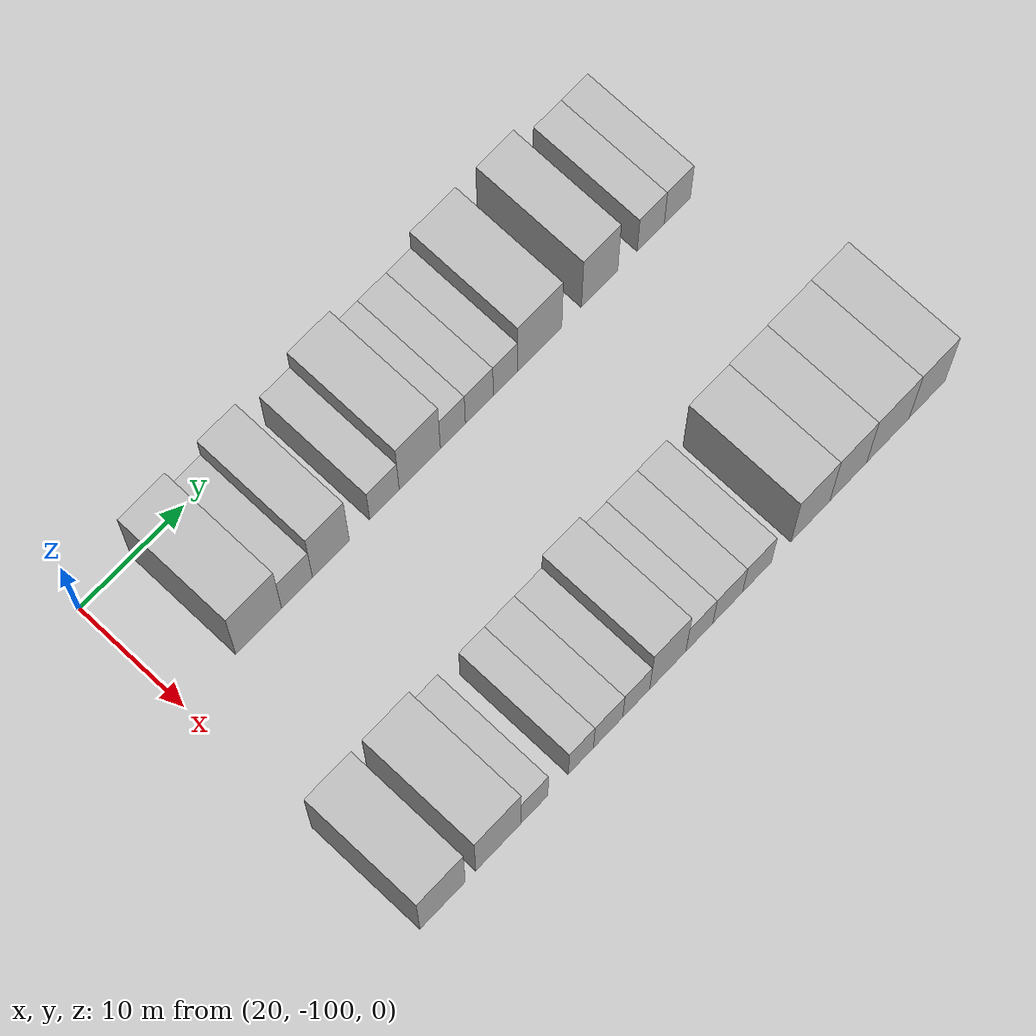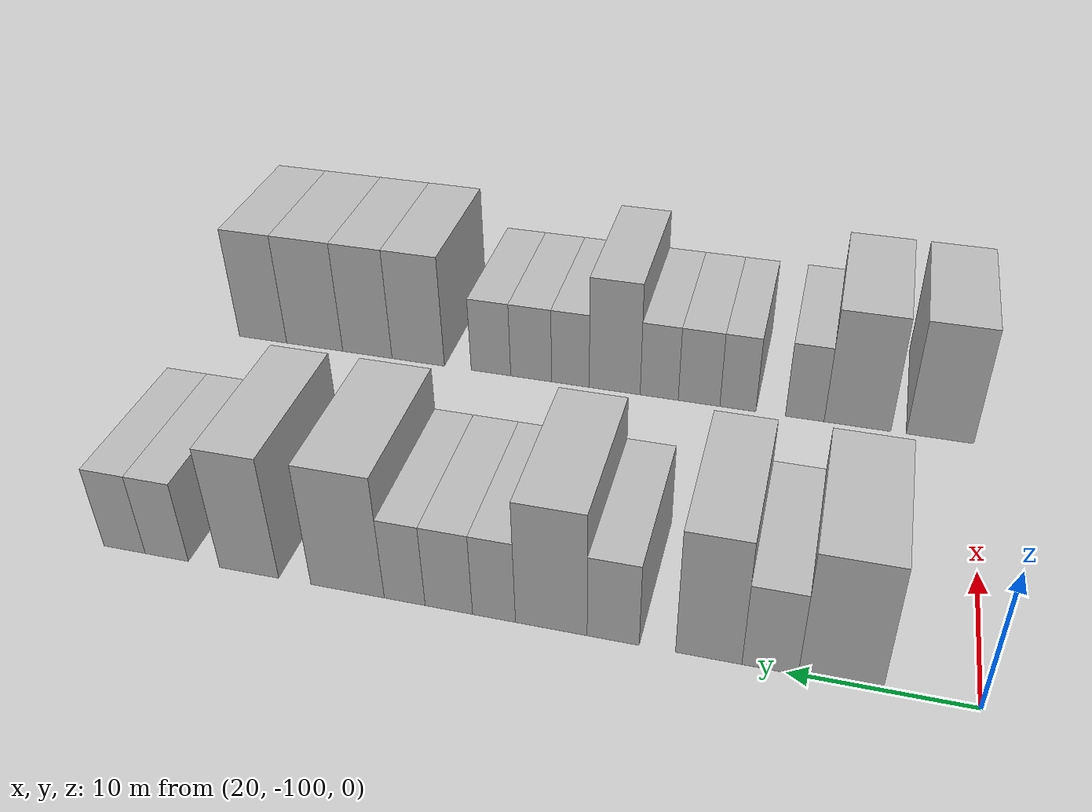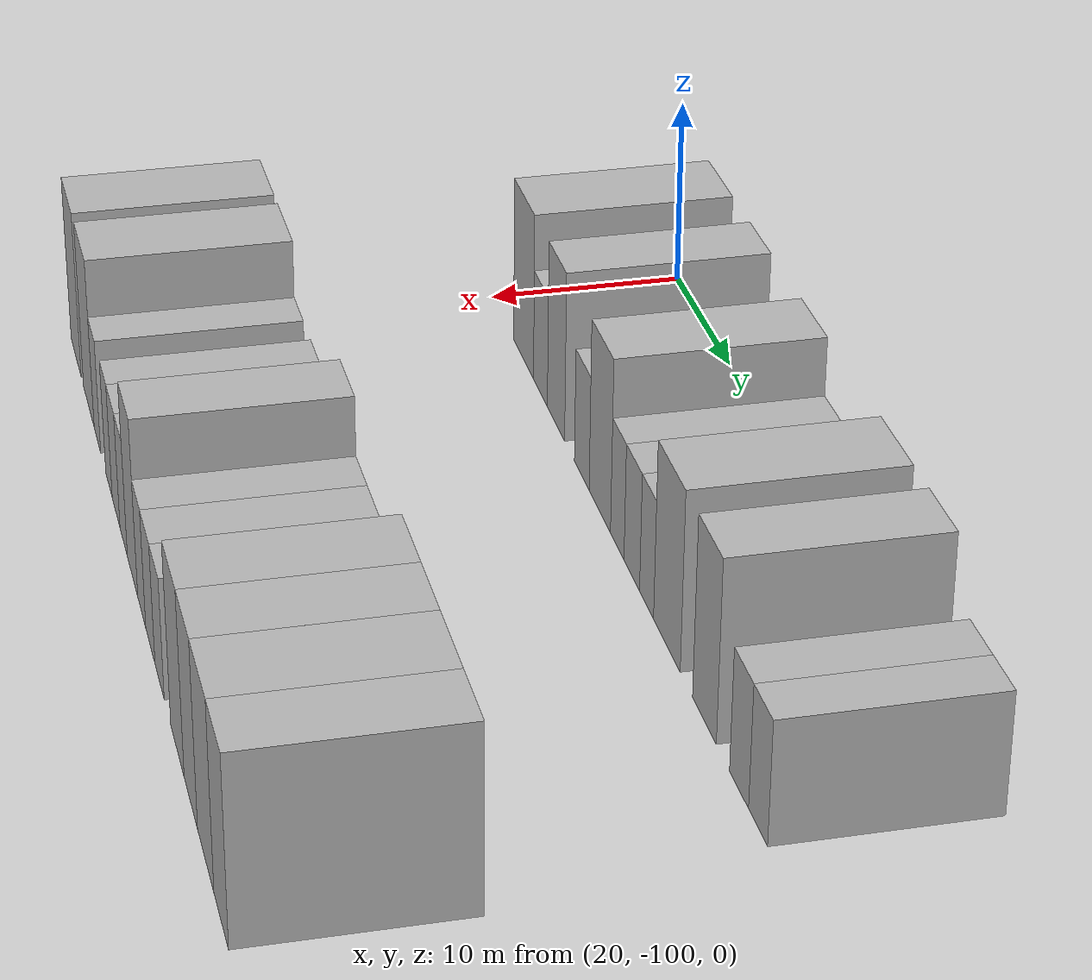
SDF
<sdf version="1.6">
 <world name="default">
  <model name="building_29">
   <static>1</static>
   <pose>25.0000 -92.8101 0 0.000000 0.000000 0.000000</pose>
   <link name="link">
    <pose>0 0 4.50 0 0 0</pose>
    <collision name="collision"><geometry><box><size>10.0000 4.4262 9.0000</size></box></geometry></collision>
    <visual name="visual">
     <cast_shadows>0</cast_shadows>
     <geometry><box><size>10.0000 4.4262 9.0000</size></box></geometry>
     <material>
      <script>
       <uri>model://HANNAS_wall/materials/scripts</uri>
       <uri>model://HANNAS_wall/materials/textures</uri>
       <name>vrc/HANNAS_wall</name>
      </script>
     </material>
    </visual>
   </link>
  </model>
  <model name="building_30">
   <static>1</static>
   <pose>25.0000 -89.0975 0 0.000000 0.000000 0.000000</pose>
   <link name="link">
    <pose>0 0 3.00 0 0 0</pose>
    <collision name="collision"><geometry><box><size>10.0000 2.9989 6.0000</size></box></geometry></collision>
    <visual name="visual">
     <cast_shadows>0</cast_shadows>
     <geometry><box><size>10.0000 2.9989 6.0000</size></box></geometry>
     <material>
      <script>
       <uri>model://HANNAS_wall/materials/scripts</uri>
       <uri>model://HANNAS_wall/materials/textures</uri>
       <name>vrc/HANNAS_wall</name>
      </script>
     </material>
    </visual>
   </link>
  </model>
  <model name="building_31">
   <static>1</static>
   <pose>25.0000 -85.7972 0 0.000000 0.000000 0.000000</pose>
   <link name="link">
    <pose>0 0 4.50 0 0 0</pose>
    <collision name="collision"><geometry><box><size>10.0000 3.6017 9.0000</size></box></geometry></collision>
    <visual name="visual">
     <cast_shadows>0</cast_shadows>
     <geometry><box><size>10.0000 3.6017 9.0000</size></box></geometry>
     <material>
      <script>
       <uri>model://HANNAS_wall/materials/scripts</uri>
       <uri>model://HANNAS_wall/materials/textures</uri>
       <name>vrc/HANNAS_wall</name>
      </script>
     </material>
    </visual>
   </link>
  </model>
  <model name="building_32">
   <static>1</static>
   <pose>25.0000 -80.5384 0 0.000000 0.000000 0.000000</pose>
   <link name="link">
    <pose>0 0 3.00 0 0 0</pose>
    <collision name="collision"><geometry><box><size>10.0000 2.9159 6.0000</size></box></geometry></collision>
    <visual name="visual">
     <cast_shadows>0</cast_shadows>
     <geometry><box><size>10.0000 2.9159 6.0000</size></box></geometry>
     <material>
      <script>
       <uri>model://HANNAS_wall/materials/scripts</uri>
       <uri>model://HANNAS_wall/materials/textures</uri>
       <name>vrc/HANNAS_wall</name>
      </script>
     </material>
    </visual>
   </link>
  </model>
  <model name="building_33">
   <static>1</static>
   <pose>25.0000 -77.0380 0 0.000000 0.000000 0.000000</pose>
   <link name="link">
    <pose>0 0 4.50 0 0 0</pose>
    <collision name="collision"><geometry><box><size>10.0000 4.0849 9.0000</size></box></geometry></collision>
    <visual name="visual">
     <cast_shadows>0</cast_shadows>
     <geometry><box><size>10.0000 4.0849 9.0000</size></box></geometry>
     <material>
      <script>
       <uri>model://HANNAS_wall/materials/scripts</uri>
       <uri>model://HANNAS_wall/materials/textures</uri>
       <name>vrc/HANNAS_wall</name>
      </script>
     </material>
    </visual>
   </link>
  </model>
  <model name="building_34">
   <static>1</static>
   <pose>25.0000 -73.7491 0 0.000000 0.000000 0.000000</pose>
   <link name="link">
    <pose>0 0 3.00 0 0 0</pose>
    <collision name="collision"><geometry><box><size>10.0000 2.4927 6.0000</size></box></geometry></collision>
    <visual name="visual">
     <cast_shadows>0</cast_shadows>
     <geometry><box><size>10.0000 2.4927 6.0000</size></box></geometry>
     <material>
      <script>
       <uri>model://HANNAS_wall/materials/scripts</uri>
       <uri>model://HANNAS_wall/materials/textures</uri>
       <name>vrc/HANNAS_wall</name>
      </script>
     </material>
    </visual>
   </link>
  </model>
  <model name="building_35">
   <static>1</static>
   <pose>25.0000 -71.1056 0 0.000000 0.000000 0.000000</pose>
   <link name="link">
    <pose>0 0 3.00 0 0 0</pose>
    <collision name="collision"><geometry><box><size>10.0000 2.7944 6.0000</size></box></geometry></collision>
    <visual name="visual">
     <cast_shadows>0</cast_shadows>
     <geometry><box><size>10.0000 2.7944 6.0000</size></box></geometry>
     <material>
      <script>
       <uri>model://HANNAS_wall/materials/scripts</uri>
       <uri>model://HANNAS_wall/materials/textures</uri>
       <name>vrc/HANNAS_wall</name>
      </script>
     </material>
    </visual>
   </link>
  </model>
  <model name="building_36">
   <static>1</static>
   <pose>25.0000 -68.4861 0 0.000000 0.000000 0.000000</pose>
   <link name="link">
    <pose>0 0 3.00 0 0 0</pose>
    <collision name="collision"><geometry><box><size>10.0000 2.4445 6.0000</size></box></geometry></collision>
    <visual name="visual">
     <cast_shadows>0</cast_shadows>
     <geometry><box><size>10.0000 2.4445 6.0000</size></box></geometry>
     <material>
      <script>
       <uri>model://HANNAS_wall/materials/scripts</uri>
       <uri>model://HANNAS_wall/materials/textures</uri>
       <name>vrc/HANNAS_wall</name>
      </script>
     </material>
    </visual>
   </link>
  </model>
  <model name="building_37">
   <static>1</static>
   <pose>25.0000 -65.0238 0 0.000000 0.000000 0.000000</pose>
   <link name="link">
    <pose>0 0 4.50 0 0 0</pose>
    <collision name="collision"><geometry><box><size>10.0000 4.4801 9.0000</size></box></geometry></collision>
    <visual name="visual">
     <cast_shadows>0</cast_shadows>
     <geometry><box><size>10.0000 4.4801 9.0000</size></box></geometry>
     <material>
      <script>
       <uri>model://HANNAS_wall/materials/scripts</uri>
       <uri>model://HANNAS_wall/materials/textures</uri>
       <name>vrc/HANNAS_wall</name>
      </script>
     </material>
    </visual>
   </link>
  </model>
  <model name="building_38">
   <static>1</static>
   <pose>25.0000 -58.9223 0 0.000000 0.000000 0.000000</pose>
   <link name="link">
    <pose>0 0 4.50 0 0 0</pose>
    <collision name="collision"><geometry><box><size>10.0000 3.7229 9.0000</size></box></geometry></collision>
    <visual name="visual">
     <cast_shadows>0</cast_shadows>
     <geometry><box><size>10.0000 3.7229 9.0000</size></box></geometry>
     <material>
      <script>
       <uri>model://HANNAS_wall/materials/scripts</uri>
       <uri>model://HANNAS_wall/materials/textures</uri>
       <name>vrc/HANNAS_wall</name>
      </script>
     </material>
    </visual>
   </link>
  </model>
  <model name="building_39">
   <static>1</static>
   <pose>25.0000 -53.6632 0 0.000000 0.000000 0.000000</pose>
   <link name="link">
    <pose>0 0 3.00 0 0 0</pose>
    <collision name="collision"><geometry><box><size>10.0000 2.7953 6.0000</size></box></geometry></collision>
    <visual name="visual">
     <cast_shadows>0</cast_shadows>
     <geometry><box><size>10.0000 2.7953 6.0000</size></box></geometry>
     <material>
      <script>
       <uri>model://HANNAS_wall/materials/scripts</uri>
       <uri>model://HANNAS_wall/materials/textures</uri>
       <name>vrc/HANNAS_wall</name>
      </script>
     </material>
    </visual>
   </link>
  </model>
  <model name="building_40">
   <static>1</static>
   <pose>25.0000 -50.9100 0 0.000000 0.000000 0.000000</pose>
   <link name="link">
    <pose>0 0 3.00 0 0 0</pose>
    <collision name="collision"><geometry><box><size>10.0000 2.7112 6.0000</size></box></geometry></collision>
    <visual name="visual">
     <cast_shadows>0</cast_shadows>
     <geometry><box><size>10.0000 2.7112 6.0000</size></box></geometry>
     <material>
      <script>
       <uri>model://HANNAS_wall/materials/scripts</uri>
       <uri>model://HANNAS_wall/materials/textures</uri>
       <name>vrc/HANNAS_wall</name>
      </script>
     </material>
    </visual>
   </link>
  </model>
  <model name="building_130">
   <static>1</static>
   <pose>47.0000 -97.8074 0 0.000000 0.000000 0.000000</pose>
   <link name="link">
    <pose>0 0 4.50 0 0 0</pose>
    <collision name="collision"><geometry><box><size>10.0000 4.3491 9.0000</size></box></geometry></collision>
    <visual name="visual">
     <cast_shadows>0</cast_shadows>
     <geometry><box><size>10.0000 4.3491 9.0000</size></box></geometry>
     <material>
      <script>
       <uri>model://HANNAS_wall/materials/scripts</uri>
       <uri>model://HANNAS_wall/materials/textures</uri>
       <name>vrc/HANNAS_wall</name>
      </script>
     </material>
    </visual>
   </link>
  </model>
  <model name="building_131">
   <static>1</static>
   <pose>47.0000 -92.4303 0 0.000000 0.000000 0.000000</pose>
   <link name="link">
    <pose>0 0 4.50 0 0 0</pose>
    <collision name="collision"><geometry><box><size>10.0000 4.4052 9.0000</size></box></geometry></collision>
    <visual name="visual">
     <cast_shadows>0</cast_shadows>
     <geometry><box><size>10.0000 4.4052 9.0000</size></box></geometry>
     <material>
      <script>
       <uri>model://HANNAS_wall/materials/scripts</uri>
       <uri>model://HANNAS_wall/materials/textures</uri>
       <name>vrc/HANNAS_wall</name>
      </script>
     </material>
    </visual>
   </link>
  </model>
  <model name="building_132">
   <static>1</static>
   <pose>47.0000 -88.9315 0 0.000000 0.000000 0.000000</pose>
   <link name="link">
    <pose>0 0 3.00 0 0 0</pose>
    <collision name="collision"><geometry><box><size>10.0000 2.5923 6.0000</size></box></geometry></collision>
    <visual name="visual">
     <cast_shadows>0</cast_shadows>
     <geometry><box><size>10.0000 2.5923 6.0000</size></box></geometry>
     <material>
      <script>
       <uri>model://HANNAS_wall/materials/scripts</uri>
       <uri>model://HANNAS_wall/materials/textures</uri>
       <name>vrc/HANNAS_wall</name>
      </script>
     </material>
    </visual>
   </link>
  </model>
  <model name="building_133">
   <static>1</static>
   <pose>47.0000 -84.4056 0 0.000000 0.000000 0.000000</pose>
   <link name="link">
    <pose>0 0 3.00 0 0 0</pose>
    <collision name="collision"><geometry><box><size>10.0000 2.4596 6.0000</size></box></geometry></collision>
    <visual name="visual">
     <cast_shadows>0</cast_shadows>
     <geometry><box><size>10.0000 2.4596 6.0000</size></box></geometry>
     <material>
      <script>
       <uri>model://HANNAS_wall/materials/scripts</uri>
       <uri>model://HANNAS_wall/materials/textures</uri>
       <name>vrc/HANNAS_wall</name>
      </script>
     </material>
    </visual>
   </link>
  </model>
  <model name="building_134">
   <static>1</static>
   <pose>47.0000 -81.7333 0 0.000000 0.000000 0.000000</pose>
   <link name="link">
    <pose>0 0 3.00 0 0 0</pose>
    <collision name="collision"><geometry><box><size>10.0000 2.8851 6.0000</size></box></geometry></collision>
    <visual name="visual">
     <cast_shadows>0</cast_shadows>
     <geometry><box><size>10.0000 2.8851 6.0000</size></box></geometry>
     <material>
      <script>
       <uri>model://HANNAS_wall/materials/scripts</uri>
       <uri>model://HANNAS_wall/materials/textures</uri>
       <name>vrc/HANNAS_wall</name>
      </script>
     </material>
    </visual>
   </link>
  </model>
  <model name="building_135">
   <static>1</static>
   <pose>47.0000 -78.9583 0 0.000000 0.000000 0.000000</pose>
   <link name="link">
    <pose>0 0 3.00 0 0 0</pose>
    <collision name="collision"><geometry><box><size>10.0000 2.6649 6.0000</size></box></geometry></collision>
    <visual name="visual">
     <cast_shadows>0</cast_shadows>
     <geometry><box><size>10.0000 2.6649 6.0000</size></box></geometry>
     <material>
      <script>
       <uri>model://HANNAS_wall/materials/scripts</uri>
       <uri>model://HANNAS_wall/materials/textures</uri>
       <name>vrc/HANNAS_wall</name>
      </script>
     </material>
    </visual>
   </link>
  </model>
  <model name="building_136">
   <static>1</static>
   <pose>47.0000 -75.8178 0 0.000000 0.000000 0.000000</pose>
   <link name="link">
    <pose>0 0 4.50 0 0 0</pose>
    <collision name="collision"><geometry><box><size>10.0000 3.6159 9.0000</size></box></geometry></collision>
    <visual name="visual">
     <cast_shadows>0</cast_shadows>
     <geometry><box><size>10.0000 3.6159 9.0000</size></box></geometry>
     <material>
      <script>
       <uri>model://HANNAS_wall/materials/scripts</uri>
       <uri>model://HANNAS_wall/materials/textures</uri>
       <name>vrc/HANNAS_wall</name>
      </script>
     </material>
    </visual>
   </link>
  </model>
  <model name="building_137">
   <static>1</static>
   <pose>47.0000 -72.6596 0 0.000000 0.000000 0.000000</pose>
   <link name="link">
    <pose>0 0 3.00 0 0 0</pose>
    <collision name="collision"><geometry><box><size>10.0000 2.7004 6.0000</size></box></geometry></collision>
    <visual name="visual">
     <cast_shadows>0</cast_shadows>
     <geometry><box><size>10.0000 2.7004 6.0000</size></box></geometry>
     <material>
      <script>
       <uri>model://HANNAS_wall/materials/scripts</uri>
       <uri>model://HANNAS_wall/materials/textures</uri>
       <name>vrc/HANNAS_wall</name>
      </script>
     </material>
    </visual>
   </link>
  </model>
  <model name="building_138">
   <static>1</static>
   <pose>47.0000 -69.8106 0 0.000000 0.000000 0.000000</pose>
   <link name="link">
    <pose>0 0 3.00 0 0 0</pose>
    <collision name="collision"><geometry><box><size>10.0000 2.9976 6.0000</size></box></geometry></collision>
    <visual name="visual">
     <cast_shadows>0</cast_shadows>
     <geometry><box><size>10.0000 2.9976 6.0000</size></box></geometry>
     <material>
      <script>
       <uri>model://HANNAS_wall/materials/scripts</uri>
       <uri>model://HANNAS_wall/materials/textures</uri>
       <name>vrc/HANNAS_wall</name>
      </script>
     </material>
    </visual>
   </link>
  </model>
  <model name="building_139">
   <static>1</static>
   <pose>47.0000 -66.8503 0 0.000000 0.000000 0.000000</pose>
   <link name="link">
    <pose>0 0 3.00 0 0 0</pose>
    <collision name="collision"><geometry><box><size>10.0000 2.9230 6.0000</size></box></geometry></collision>
    <visual name="visual">
     <cast_shadows>0</cast_shadows>
     <geometry><box><size>10.0000 2.9230 6.0000</size></box></geometry>
     <material>
      <script>
       <uri>model://HANNAS_wall/materials/scripts</uri>
       <uri>model://HANNAS_wall/materials/textures</uri>
       <name>vrc/HANNAS_wall</name>
      </script>
     </material>
    </visual>
   </link>
  </model>
  <model name="building_140">
   <static>1</static>
   <pose>47.0000 -61.4051 0 0.000000 0.000000 0.000000</pose>
   <link name="link">
    <pose>0 0 4.50 0 0 0</pose>
    <collision name="collision"><geometry><box><size>10.0000 3.9674 9.0000</size></box></geometry></collision>
    <visual name="visual">
     <cast_shadows>0</cast_shadows>
     <geometry><box><size>10.0000 3.9674 9.0000</size></box></geometry>
     <material>
      <script>
       <uri>model://HANNAS_wall/materials/scripts</uri>
       <uri>model://HANNAS_wall/materials/textures</uri>
       <name>vrc/HANNAS_wall</name>
      </script>
     </material>
    </visual>
   </link>
  </model>
  <model name="building_141">
   <static>1</static>
   <pose>47.0000 -57.5249 0 0.000000 0.000000 0.000000</pose>
   <link name="link">
    <pose>0 0 4.50 0 0 0</pose>
    <collision name="collision"><geometry><box><size>10.0000 3.7930 9.0000</size></box></geometry></collision>
    <visual name="visual">
     <cast_shadows>0</cast_shadows>
     <geometry><box><size>10.0000 3.7930 9.0000</size></box></geometry>
     <material>
      <script>
       <uri>model://HANNAS_wall/materials/scripts</uri>
       <uri>model://HANNAS_wall/materials/textures</uri>
       <name>vrc/HANNAS_wall</name>
      </script>
     </material>
    </visual>
   </link>
  </model>
  <model name="building_142">
   <static>1</static>
   <pose>47.0000 -53.4305 0 0.000000 0.000000 0.000000</pose>
   <link name="link">
    <pose>0 0 4.50 0 0 0</pose>
    <collision name="collision"><geometry><box><size>10.0000 4.3957 9.0000</size></box></geometry></collision>
    <visual name="visual">
     <cast_shadows>0</cast_shadows>
     <geometry><box><size>10.0000 4.3957 9.0000</size></box></geometry>
     <material>
      <script>
       <uri>model://HANNAS_wall/materials/scripts</uri>
       <uri>model://HANNAS_wall/materials/textures</uri>
       <name>vrc/HANNAS_wall</name>
      </script>
     </material>
    </visual>
   </link>
  </model>
  <model name="building_143">
   <static>1</static>
   <pose>47.0000 -49.3524 0 0.000000 0.000000 0.000000</pose>
   <link name="link">
    <pose>0 0 4.50 0 0 0</pose>
    <collision name="collision"><geometry><box><size>10.0000 3.7604 9.0000</size></box></geometry></collision>
    <visual name="visual">
     <cast_shadows>0</cast_shadows>
     <geometry><box><size>10.0000 3.7604 9.0000</size></box></geometry>
     <material>
      <script>
       <uri>model://HANNAS_wall/materials/scripts</uri>
       <uri>model://HANNAS_wall/materials/textures</uri>
       <name>vrc/HANNAS_wall</name>
      </script>
     </material>
    </visual>
   </link>
  </model>
 </world>
</sdf>
